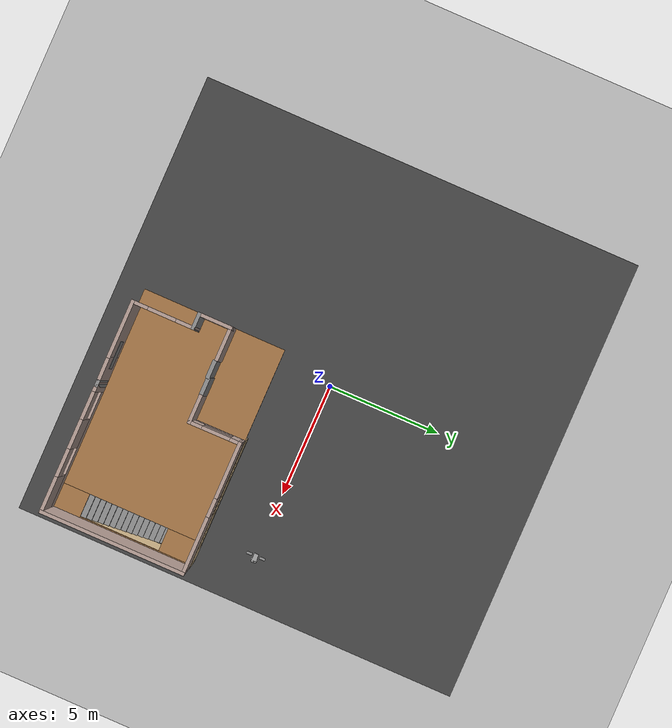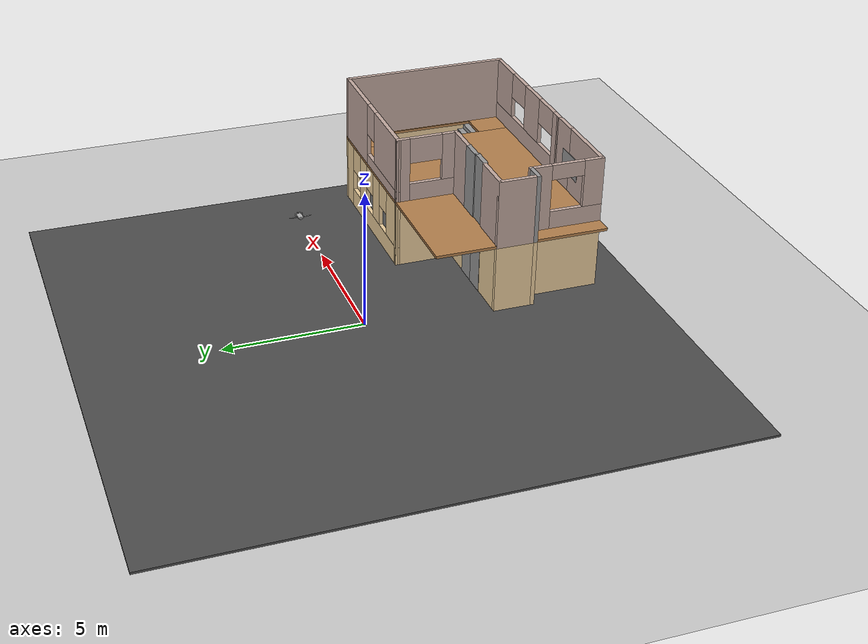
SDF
<sdf version="1.6">
 <world name="default">
  <model name="ground_plane">
   <static>1</static>
   <link name="link">
    <collision name="collision">
     <geometry><plane><normal>0 0 1</normal><size>100 100</size></plane></geometry>
     <surface>
      <contact><collide_bitmask>65535</collide_bitmask></contact>
      <friction><ode><mu>100</mu><mu2>50</mu2></ode></friction>
     </surface>
    </collision>
    <visual name="visual">
     <cast_shadows>0</cast_shadows>
     <geometry><plane><normal>0 0 1</normal><size>100 100</size></plane></geometry>
     <material>
      <script><uri>file://media/materials/scripts/gazebo.material</uri><name>Gazebo/Grey</name></script>
     </material>
    </visual>
   </link>
  </model>
  <model name="asphalt_plane">
   <static>1</static>
   <link name="link">
    <collision name="collision"><geometry><box><size>20 20 0.1</size></box></geometry></collision>
    <visual name="visual">
     <cast_shadows>0</cast_shadows>
     <geometry><box><size>20 20 0.1</size></box></geometry>
     <material>
      <script>
       <uri>model://asphalt_plane/materials/scripts</uri>
       <uri>model://asphalt_plane/materials/textures</uri>
       <name>vrc/asphalt</name>
      </script>
     </material>
    </visual>
   </link>
   <pose>0.036625 -0.045084 0 0 -0 0</pose>
  </model>
  <model name="tuc_house">
   <pose>4.28047 -5.41439 0 0 -0 0</pose>
   <link name="Door_2">
    <collision name="Door_2_Collision">
     <geometry><box><size>1 0.17 2.5</size></box></geometry>
     <pose>0 0 1.25 0 -0 0</pose>
    </collision>
    <visual name="Door_2_Visual">
     <pose>0 0 1.25 0 -0 0</pose>
     <geometry><box><size>1 0.17 2.5</size></box></geometry>
     <material>
      <script><uri>file://media/materials/scripts/gazebo.material</uri><name>Gazebo/Grey</name></script>
     </material>
    </visual>
    <pose>-1.34064 -3.05607 0 0 -0 3.14159</pose>
   </link>
   <link name="Floor_0">
    <pose>-0 -0 2.5 0 -0 0</pose>
    <visual name="Floor_0_Visual_0">
     <pose>-0.597526 0 0.05 0 -0 0</pose>
     <geometry><box><size>8.5947 6.26194 0.1</size></box></geometry>
     <material>
      <script><uri>file://media/materials/scripts/gazebo.material</uri><name>Gazebo/Wood</name></script>
      <ambient>1 1 1 1</ambient>
     </material>
     <meta><layer>1</layer></meta>
    </visual>
    <collision name="Floor_0_Collision_0">
     <geometry><box><size>8.5947 6.26194 0.1</size></box></geometry>
     <pose>-0.597526 0 0.05 0 -0 0</pose>
    </collision>
    <visual name="Floor_0_Visual_1">
     <pose>4.29735 -2.47324 0.05 0 -0 0</pose>
     <geometry><box><size>1.19505 1.31546 0.1</size></box></geometry>
     <material>
      <script><uri>file://media/materials/scripts/gazebo.material</uri><name>Gazebo/Wood</name></script>
      <ambient>1 1 1 1</ambient>
     </material>
     <meta><layer>1</layer></meta>
    </visual>
    <collision name="Floor_0_Collision_1">
     <geometry><box><size>1.19505 1.31546 0.1</size></box></geometry>
     <pose>4.29735 -2.47324 0.05 0 -0 0</pose>
    </collision>
    <visual name="Floor_0_Visual_2">
     <pose>4.79735 0.657731 0.05 0 -0 0</pose>
     <geometry><box><size>0.195052 4.94648 0.1</size></box></geometry>
     <material>
      <script><uri>file://media/materials/scripts/gazebo.material</uri><name>Gazebo/Wood</name></script>
      <ambient>1 1 1 1</ambient>
     </material>
     <meta><layer>1</layer></meta>
    </visual>
    <collision name="Floor_0_Collision_2">
     <geometry><box><size>0.195052 4.94648 0.1</size></box></geometry>
     <pose>4.79735 0.657731 0.05 0 -0 0</pose>
    </collision>
    <visual name="Floor_0_Visual_3">
     <pose>4.19983 2.40773 0.05 0 -0 0</pose>
     <geometry><box><size>1 1.44648 0.1</size></box></geometry>
     <material>
      <script><uri>file://media/materials/scripts/gazebo.material</uri><name>Gazebo/Wood</name></script>
      <ambient>1 1 1 1</ambient>
     </material>
     <meta><layer>1</layer></meta>
    </visual>
    <collision name="Floor_0_Collision_3">
     <geometry><box><size>1 1.44648 0.1</size></box></geometry>
     <pose>4.19983 2.40773 0.05 0 -0 0</pose>
    </collision>
    <visual name="Floor_0_Visual_4">
     <pose>4.79735 3.13097 0.05 0 -0 0</pose>
     <geometry><box><size>0.195052 0 0.1</size></box></geometry>
     <material>
      <script><uri>file://media/materials/scripts/gazebo.material</uri><name>Gazebo/Wood</name></script>
      <ambient>1 1 1 1</ambient>
     </material>
     <meta><layer>1</layer></meta>
    </visual>
    <collision name="Floor_0_Collision_4">
     <geometry><box><size>0.195052 0 0.1</size></box></geometry>
     <pose>4.79735 3.13097 0.05 0 -0 0</pose>
    </collision>
   </link>
   <link name="Stairs_0">
    <visual name="Stairs_0_Visual_0">
     <pose>4.19983 1.56782 0.083333 0 -0 0</pose>
     <geometry><box><size>1 0.233333 0.166667</size></box></geometry>
     <material>
      <script><uri>file://media/materials/scripts/gazebo.material</uri><name>Gazebo/Grey</name></script>
      <ambient>1 1 1 1</ambient>
     </material>
     <meta><layer>0</layer></meta>
    </visual>
    <collision name="Stairs_0_Collision_0">
     <geometry><box><size>1 0.233333 0.166667</size></box></geometry>
     <pose>4.19983 1.56782 0.083333 0 -0 0</pose>
    </collision>
    <visual name="Stairs_0_Visual_1">
     <pose>4.19983 1.33449 0.25 0 -0 0</pose>
     <geometry><box><size>1 0.233333 0.166667</size></box></geometry>
     <material>
      <script><uri>file://media/materials/scripts/gazebo.material</uri><name>Gazebo/Grey</name></script>
      <ambient>1 1 1 1</ambient>
     </material>
     <meta><layer>0</layer></meta>
    </visual>
    <collision name="Stairs_0_Collision_1">
     <geometry><box><size>1 0.233333 0.166667</size></box></geometry>
     <pose>4.19983 1.33449 0.25 0 -0 0</pose>
    </collision>
    <visual name="Stairs_0_Visual_2">
     <pose>4.19983 1.10116 0.416667 0 -0 0</pose>
     <geometry><box><size>1 0.233333 0.166667</size></box></geometry>
     <material>
      <script><uri>file://media/materials/scripts/gazebo.material</uri><name>Gazebo/Grey</name></script>
      <ambient>1 1 1 1</ambient>
     </material>
     <meta><layer>0</layer></meta>
    </visual>
    <collision name="Stairs_0_Collision_2">
     <geometry><box><size>1 0.233333 0.166667</size></box></geometry>
     <pose>4.19983 1.10116 0.416667 0 -0 0</pose>
    </collision>
    <visual name="Stairs_0_Visual_3">
     <pose>4.19983 0.867824 0.583333 0 -0 0</pose>
     <geometry><box><size>1 0.233333 0.166667</size></box></geometry>
     <material>
      <script><uri>file://media/materials/scripts/gazebo.material</uri><name>Gazebo/Grey</name></script>
      <ambient>1 1 1 1</ambient>
     </material>
     <meta><layer>0</layer></meta>
    </visual>
    <collision name="Stairs_0_Collision_3">
     <geometry><box><size>1 0.233333 0.166667</size></box></geometry>
     <pose>4.19983 0.867824 0.583333 0 -0 0</pose>
    </collision>
    <visual name="Stairs_0_Visual_4">
     <pose>4.19983 0.63449 0.75 0 -0 0</pose>
     <geometry><box><size>1 0.233333 0.166667</size></box></geometry>
     <material>
      <script><uri>file://media/materials/scripts/gazebo.material</uri><name>Gazebo/Grey</name></script>
      <ambient>1 1 1 1</ambient>
     </material>
     <meta><layer>0</layer></meta>
    </visual>
    <collision name="Stairs_0_Collision_4">
     <geometry><box><size>1 0.233333 0.166667</size></box></geometry>
     <pose>4.19983 0.63449 0.75 0 -0 0</pose>
    </collision>
    <visual name="Stairs_0_Visual_5">
     <pose>4.19983 0.401157 0.916667 0 -0 0</pose>
     <geometry><box><size>1 0.233333 0.166667</size></box></geometry>
     <material>
      <script><uri>file://media/materials/scripts/gazebo.material</uri><name>Gazebo/Grey</name></script>
      <ambient>1 1 1 1</ambient>
     </material>
     <meta><layer>0</layer></meta>
    </visual>
    <collision name="Stairs_0_Collision_5">
     <geometry><box><size>1 0.233333 0.166667</size></box></geometry>
     <pose>4.19983 0.401157 0.916667 0 -0 0</pose>
    </collision>
    <visual name="Stairs_0_Visual_6">
     <pose>4.19983 0.167824 1.08333 0 -0 0</pose>
     <geometry><box><size>1 0.233333 0.166667</size></box></geometry>
     <material>
      <script><uri>file://media/materials/scripts/gazebo.material</uri><name>Gazebo/Grey</name></script>
      <ambient>1 1 1 1</ambient>
     </material>
     <meta><layer>0</layer></meta>
    </visual>
    <collision name="Stairs_0_Collision_6">
     <geometry><box><size>1 0.233333 0.166667</size></box></geometry>
     <pose>4.19983 0.167824 1.08333 0 -0 0</pose>
    </collision>
    <visual name="Stairs_0_Visual_7">
     <pose>4.19983 -0.06551 1.25 0 -0 0</pose>
     <geometry><box><size>1 0.233333 0.166667</size></box></geometry>
     <material>
      <script><uri>file://media/materials/scripts/gazebo.material</uri><name>Gazebo/Grey</name></script>
      <ambient>1 1 1 1</ambient>
     </material>
     <meta><layer>0</layer></meta>
    </visual>
    <collision name="Stairs_0_Collision_7">
     <geometry><box><size>1 0.233333 0.166667</size></box></geometry>
     <pose>4.19983 -0.06551 1.25 0 -0 0</pose>
    </collision>
    <visual name="Stairs_0_Visual_8">
     <pose>4.19983 -0.298843 1.41667 0 -0 0</pose>
     <geometry><box><size>1 0.233333 0.166667</size></box></geometry>
     <material>
      <script><uri>file://media/materials/scripts/gazebo.material</uri><name>Gazebo/Grey</name></script>
      <ambient>1 1 1 1</ambient>
     </material>
     <meta><layer>0</layer></meta>
    </visual>
    <collision name="Stairs_0_Collision_8">
     <geometry><box><size>1 0.233333 0.166667</size></box></geometry>
     <pose>4.19983 -0.298843 1.41667 0 -0 0</pose>
    </collision>
    <visual name="Stairs_0_Visual_9">
     <pose>4.19983 -0.532176 1.58333 0 -0 0</pose>
     <geometry><box><size>1 0.233333 0.166667</size></box></geometry>
     <material>
      <script><uri>file://media/materials/scripts/gazebo.material</uri><name>Gazebo/Grey</name></script>
      <ambient>1 1 1 1</ambient>
     </material>
     <meta><layer>0</layer></meta>
    </visual>
    <collision name="Stairs_0_Collision_9">
     <geometry><box><size>1 0.233333 0.166667</size></box></geometry>
     <pose>4.19983 -0.532176 1.58333 0 -0 0</pose>
    </collision>
    <visual name="Stairs_0_Visual_10">
     <pose>4.19983 -0.76551 1.75 0 -0 0</pose>
     <geometry><box><size>1 0.233333 0.166667</size></box></geometry>
     <material>
      <script><uri>file://media/materials/scripts/gazebo.material</uri><name>Gazebo/Grey</name></script>
      <ambient>1 1 1 1</ambient>
     </material>
     <meta><layer>0</layer></meta>
    </visual>
    <collision name="Stairs_0_Collision_10">
     <geometry><box><size>1 0.233333 0.166667</size></box></geometry>
     <pose>4.19983 -0.76551 1.75 0 -0 0</pose>
    </collision>
    <visual name="Stairs_0_Visual_11">
     <pose>4.19983 -0.998843 1.91667 0 -0 0</pose>
     <geometry><box><size>1 0.233333 0.166667</size></box></geometry>
     <material>
      <script><uri>file://media/materials/scripts/gazebo.material</uri><name>Gazebo/Grey</name></script>
      <ambient>1 1 1 1</ambient>
     </material>
     <meta><layer>0</layer></meta>
    </visual>
    <collision name="Stairs_0_Collision_11">
     <geometry><box><size>1 0.233333 0.166667</size></box></geometry>
     <pose>4.19983 -0.998843 1.91667 0 -0 0</pose>
    </collision>
    <visual name="Stairs_0_Visual_12">
     <pose>4.19983 -1.23218 2.08333 0 -0 0</pose>
     <geometry><box><size>1 0.233333 0.166667</size></box></geometry>
     <material>
      <script><uri>file://media/materials/scripts/gazebo.material</uri><name>Gazebo/Grey</name></script>
      <ambient>1 1 1 1</ambient>
     </material>
     <meta><layer>0</layer></meta>
    </visual>
    <collision name="Stairs_0_Collision_12">
     <geometry><box><size>1 0.233333 0.166667</size></box></geometry>
     <pose>4.19983 -1.23218 2.08333 0 -0 0</pose>
    </collision>
    <visual name="Stairs_0_Visual_13">
     <pose>4.19983 -1.46551 2.25 0 -0 0</pose>
     <geometry><box><size>1 0.233333 0.166667</size></box></geometry>
     <material>
      <script><uri>file://media/materials/scripts/gazebo.material</uri><name>Gazebo/Grey</name></script>
      <ambient>1 1 1 1</ambient>
     </material>
     <meta><layer>0</layer></meta>
    </visual>
    <collision name="Stairs_0_Collision_13">
     <geometry><box><size>1 0.233333 0.166667</size></box></geometry>
     <pose>4.19983 -1.46551 2.25 0 -0 0</pose>
    </collision>
    <visual name="Stairs_0_Visual_14">
     <pose>4.19983 -1.69884 2.41667 0 -0 0</pose>
     <geometry><box><size>1 0.233333 0.166667</size></box></geometry>
     <material>
      <script><uri>file://media/materials/scripts/gazebo.material</uri><name>Gazebo/Grey</name></script>
      <ambient>1 1 1 1</ambient>
     </material>
     <meta><layer>0</layer></meta>
    </visual>
    <collision name="Stairs_0_Collision_14">
     <geometry><box><size>1 0.233333 0.166667</size></box></geometry>
     <pose>4.19983 -1.69884 2.41667 0 -0 0</pose>
    </collision>
   </link>
   <link name="Wall_14">
    <collision name="Wall_14_Collision">
     <geometry><box><size>2.75 0.15 2.5</size></box></geometry>
     <pose>0 0 1.25 0 -0 0</pose>
    </collision>
    <visual name="Wall_14_Visual">
     <pose>0 0 1.25 0 -0 0</pose>
     <geometry><box><size>2.75 0.15 2.5</size></box></geometry>
     <material>
      <script><uri>file://media/materials/scripts/gazebo.material</uri><name>Gazebo/Grey</name></script>
      <ambient>0.921569 0.807843 0.615686 1</ambient>
     </material>
     <meta><layer>0</layer></meta>
    </visual>
    <pose>-4.21988 -1.75558 0 0 -0 -1.5708</pose>
   </link>
   <link name="Wall_15">
    <collision name="Wall_15_Collision">
     <geometry><box><size>0.15 0.15 2.5</size></box></geometry>
     <pose>0 0 1.25 0 -0 0</pose>
    </collision>
    <visual name="Wall_15_Visual">
     <pose>0 0 1.25 0 -0 0</pose>
     <geometry><box><size>0.15 0.15 2.5</size></box></geometry>
     <material>
      <script><uri>file://media/materials/scripts/gazebo.material</uri><name>Gazebo/Grey</name></script>
      <ambient>1 1 1 1</ambient>
     </material>
     <meta><layer>0</layer></meta>
    </visual>
    <pose>-4.21988 -3.05558 0 0 -0 0</pose>
   </link>
   <link name="Wall_16">
    <collision name="Wall_16_Collision">
     <geometry><box><size>2.5 0.15 2.5</size></box></geometry>
     <pose>0 0 1.25 0 -0 0</pose>
    </collision>
    <visual name="Wall_16_Visual">
     <pose>0 0 1.25 0 -0 0</pose>
     <geometry><box><size>2.5 0.15 2.5</size></box></geometry>
     <material>
      <script><uri>file://media/materials/scripts/gazebo.material</uri><name>Gazebo/Grey</name></script>
      <ambient>0.921569 0.807843 0.615686 1</ambient>
     </material>
     <meta><layer>0</layer></meta>
    </visual>
    <pose>-3.04488 -3.05558 0 0 -0 0</pose>
   </link>
   <link name="Wall_18">
    <collision name="Wall_18_Collision">
     <geometry><box><size>1.5 0.15 2.5</size></box></geometry>
     <pose>0 0 1.25 0 -0 0</pose>
    </collision>
    <visual name="Wall_18_Visual">
     <pose>0 0 1.25 0 -0 0</pose>
     <geometry><box><size>1.5 0.15 2.5</size></box></geometry>
     <material>
      <script><uri>file://media/materials/scripts/gazebo.material</uri><name>Gazebo/Grey</name></script>
      <ambient>0.921569 0.807843 0.615686 1</ambient>
     </material>
     <meta><layer>0</layer></meta>
    </visual>
    <pose>-4.81988 0.21942 0 0 -0 1.5708</pose>
   </link>
   <link name="Wall_19">
    <collision name="Wall_19_Collision">
     <geometry><box><size>1.5 0.15 2.5</size></box></geometry>
     <pose>0 0 1.25 0 -0 0</pose>
    </collision>
    <visual name="Wall_19_Visual">
     <pose>0 0 1.25 0 -0 0</pose>
     <geometry><box><size>1.5 0.15 2.5</size></box></geometry>
     <material>
      <script><uri>file://media/materials/scripts/gazebo.material</uri><name>Gazebo/Grey</name></script>
      <ambient>0.921569 0.807843 0.615686 1</ambient>
     </material>
     <meta><layer>0</layer></meta>
    </visual>
    <pose>-4.14488 0.89442 0 0 -0 0</pose>
   </link>
   <link name="Wall_21">
    <collision name="Wall_21_Collision">
     <geometry><box><size>1.25 0.15 2.5</size></box></geometry>
     <pose>0 0 1.25 0 -0 0</pose>
    </collision>
    <visual name="Wall_21_Visual">
     <pose>0 0 1.25 0 -0 0</pose>
     <geometry><box><size>1.25 0.15 2.5</size></box></geometry>
     <material>
      <script><uri>file://media/materials/scripts/gazebo.material</uri><name>Gazebo/Grey</name></script>
      <ambient>0.921569 0.807843 0.615686 1</ambient>
     </material>
     <meta><layer>0</layer></meta>
    </visual>
    <pose>-1.31538 0.891409 0 0 -0 0</pose>
   </link>
   <link name="Wall_24">
    <collision name="Wall_24_Collision">
     <geometry><box><size>0.3 0.15 2.5</size></box></geometry>
     <pose>0 0 1.25 0 -0 0</pose>
    </collision>
    <visual name="Wall_24_Visual">
     <pose>0 0 1.25 0 -0 0</pose>
     <geometry><box><size>0.3 0.15 2.5</size></box></geometry>
     <material>
      <script><uri>file://media/materials/scripts/gazebo.material</uri><name>Gazebo/Grey</name></script>
      <ambient>1 1 1 1</ambient>
     </material>
     <meta><layer>0</layer></meta>
    </visual>
    <pose>-0.705123 -3.04415 0 0 -0 0</pose>
   </link>
   <link name="Wall_26">
    <pose>2.01988 -3.04415 0 0 -0 0</pose>
    <visual name="Wall_26_Visual_0">
     <pose>-2.16634 0 1.25 0 -0 0</pose>
     <geometry><box><size>1.41732 0.15 2.5</size></box></geometry>
     <material>
      <script><uri>file://media/materials/scripts/gazebo.material</uri><name>Gazebo/Grey</name></script>
      <ambient>0.921569 0.807843 0.615686 1</ambient>
     </material>
     <meta><layer>0</layer></meta>
    </visual>
    <collision name="Wall_26_Collision_0">
     <geometry><box><size>1.41732 0.15 2.5</size></box></geometry>
     <pose>-2.16634 0 1.25 0 -0 0</pose>
    </collision>
    <visual name="Wall_26_Visual_1">
     <pose>0.708663 0 0.375 0 -0 0</pose>
     <geometry><box><size>4.33268 0.15 0.75</size></box></geometry>
     <material>
      <script><uri>file://media/materials/scripts/gazebo.material</uri><name>Gazebo/Grey</name></script>
      <ambient>0.921569 0.807843 0.615686 1</ambient>
     </material>
     <meta><layer>0</layer></meta>
    </visual>
    <collision name="Wall_26_Collision_1">
     <geometry><box><size>4.33268 0.15 0.75</size></box></geometry>
     <pose>0.708663 0 0.375 0 -0 0</pose>
    </collision>
    <visual name="Wall_26_Visual_2">
     <pose>2.10866 0 1.625 0 -0 0</pose>
     <geometry><box><size>1.53268 0.15 1.75</size></box></geometry>
     <material>
      <script><uri>file://media/materials/scripts/gazebo.material</uri><name>Gazebo/Grey</name></script>
      <ambient>0.921569 0.807843 0.615686 1</ambient>
     </material>
     <meta><layer>0</layer></meta>
    </visual>
    <collision name="Wall_26_Collision_2">
     <geometry><box><size>1.53268 0.15 1.75</size></box></geometry>
     <pose>2.10866 0 1.625 0 -0 0</pose>
    </collision>
    <visual name="Wall_26_Visual_3">
     <pose>-0.057675 0 2.025 0 -0 0</pose>
     <geometry><box><size>2.8 0.15 0.95</size></box></geometry>
     <material>
      <script><uri>file://media/materials/scripts/gazebo.material</uri><name>Gazebo/Grey</name></script>
      <ambient>0.921569 0.807843 0.615686 1</ambient>
     </material>
     <meta><layer>0</layer></meta>
    </visual>
    <collision name="Wall_26_Collision_3">
     <geometry><box><size>2.8 0.15 0.95</size></box></geometry>
     <pose>-0.057675 0 2.025 0 -0 0</pose>
    </collision>
   </link>
   <link name="Wall_27">
    <collision name="Wall_27_Collision">
     <geometry><box><size>6.25 0.15 2.5</size></box></geometry>
     <pose>0 0 1.25 0 -0 0</pose>
    </collision>
    <visual name="Wall_27_Visual">
     <pose>0 0 1.25 0 -0 0</pose>
     <geometry><box><size>6.25 0.15 2.5</size></box></geometry>
     <material>
      <script><uri>file://media/materials/scripts/gazebo.material</uri><name>Gazebo/Grey</name></script>
      <ambient>0.921569 0.807843 0.615686 1</ambient>
     </material>
     <meta><layer>0</layer></meta>
    </visual>
    <pose>4.81988 0.005854 0 0 -0 1.5708</pose>
   </link>
   <link name="Wall_31">
    <pose>2.01988 3.05585 0 0 -0 3.14159</pose>
    <visual name="Wall_31_Visual_0">
     <pose>-2.45452 0 1.25 0 -0 0</pose>
     <geometry><box><size>0.840955 0.15 2.5</size></box></geometry>
     <material>
      <script><uri>file://media/materials/scripts/gazebo.material</uri><name>Gazebo/Grey</name></script>
      <ambient>0.921569 0.807843 0.615686 1</ambient>
     </material>
     <meta><layer>0</layer></meta>
    </visual>
    <collision name="Wall_31_Collision_0">
     <geometry><box><size>0.840955 0.15 2.5</size></box></geometry>
     <pose>-2.45452 0 1.25 0 -0 0</pose>
    </collision>
    <visual name="Wall_31_Visual_1">
     <pose>0.420477 0 0.375 0 -0 0</pose>
     <geometry><box><size>4.90904 0.15 0.75</size></box></geometry>
     <material>
      <script><uri>file://media/materials/scripts/gazebo.material</uri><name>Gazebo/Grey</name></script>
      <ambient>0.921569 0.807843 0.615686 1</ambient>
     </material>
     <meta><layer>0</layer></meta>
    </visual>
    <collision name="Wall_31_Collision_1">
     <geometry><box><size>4.90904 0.15 0.75</size></box></geometry>
     <pose>0.420477 0 0.375 0 -0 0</pose>
    </collision>
    <visual name="Wall_31_Visual_2">
     <pose>-0.862489 0 1.625 0 -0 0</pose>
     <geometry><box><size>0.743111 0.15 1.75</size></box></geometry>
     <material>
      <script><uri>file://media/materials/scripts/gazebo.material</uri><name>Gazebo/Grey</name></script>
      <ambient>0.921569 0.807843 0.615686 1</ambient>
     </material>
     <meta><layer>0</layer></meta>
    </visual>
    <collision name="Wall_31_Collision_2">
     <geometry><box><size>0.743111 0.15 1.75</size></box></geometry>
     <pose>-0.862489 0 1.625 0 -0 0</pose>
    </collision>
    <visual name="Wall_31_Visual_3">
     <pose>0.655733 0 1.625 0 -0 0</pose>
     <geometry><box><size>0.693333 0.15 1.75</size></box></geometry>
     <material>
      <script><uri>file://media/materials/scripts/gazebo.material</uri><name>Gazebo/Grey</name></script>
      <ambient>0.921569 0.807843 0.615686 1</ambient>
     </material>
     <meta><layer>0</layer></meta>
    </visual>
    <collision name="Wall_31_Collision_3">
     <geometry><box><size>0.693333 0.15 1.75</size></box></geometry>
     <pose>0.655733 0 1.625 0 -0 0</pose>
    </collision>
    <visual name="Wall_31_Visual_4">
     <pose>1.9387 0 0.755 0 -0 0</pose>
     <geometry><box><size>1.8726 0.15 0.01</size></box></geometry>
     <material>
      <script><uri>file://media/materials/scripts/gazebo.material</uri><name>Gazebo/Grey</name></script>
      <ambient>0.921569 0.807843 0.615686 1</ambient>
     </material>
     <meta><layer>0</layer></meta>
    </visual>
    <collision name="Wall_31_Collision_4">
     <geometry><box><size>1.8726 0.15 0.01</size></box></geometry>
     <pose>1.9387 0 0.755 0 -0 0</pose>
    </collision>
    <visual name="Wall_31_Visual_5">
     <pose>2.3387 0 1.63 0 -0 0</pose>
     <geometry><box><size>1.0726 0.15 1.74</size></box></geometry>
     <material>
      <script><uri>file://media/materials/scripts/gazebo.material</uri><name>Gazebo/Grey</name></script>
      <ambient>0.921569 0.807843 0.615686 1</ambient>
     </material>
     <meta><layer>0</layer></meta>
    </visual>
    <collision name="Wall_31_Collision_5">
     <geometry><box><size>1.0726 0.15 1.74</size></box></geometry>
     <pose>2.3387 0 1.63 0 -0 0</pose>
    </collision>
    <visual name="Wall_31_Visual_6">
     <pose>-1.63404 0 2.025 0 -0 0</pose>
     <geometry><box><size>0.8 0.15 0.95</size></box></geometry>
     <material>
      <script><uri>file://media/materials/scripts/gazebo.material</uri><name>Gazebo/Grey</name></script>
      <ambient>0.921569 0.807843 0.615686 1</ambient>
     </material>
     <meta><layer>0</layer></meta>
    </visual>
    <collision name="Wall_31_Collision_6">
     <geometry><box><size>0.8 0.15 0.95</size></box></geometry>
     <pose>-1.63404 0 2.025 0 -0 0</pose>
    </collision>
    <visual name="Wall_31_Visual_7">
     <pose>-0.090934 0 2.025 0 -0 0</pose>
     <geometry><box><size>0.8 0.15 0.95</size></box></geometry>
     <material>
      <script><uri>file://media/materials/scripts/gazebo.material</uri><name>Gazebo/Grey</name></script>
      <ambient>0.921569 0.807843 0.615686 1</ambient>
     </material>
     <meta><layer>0</layer></meta>
    </visual>
    <collision name="Wall_31_Collision_7">
     <geometry><box><size>0.8 0.15 0.95</size></box></geometry>
     <pose>-0.090934 0 2.025 0 -0 0</pose>
    </collision>
    <visual name="Wall_31_Visual_8">
     <pose>1.4024 0 2.03 0 -0 0</pose>
     <geometry><box><size>0.8 0.15 0.94</size></box></geometry>
     <material>
      <script><uri>file://media/materials/scripts/gazebo.material</uri><name>Gazebo/Grey</name></script>
      <ambient>0.921569 0.807843 0.615686 1</ambient>
     </material>
     <meta><layer>0</layer></meta>
    </visual>
    <collision name="Wall_31_Collision_8">
     <geometry><box><size>0.8 0.15 0.94</size></box></geometry>
     <pose>1.4024 0 2.03 0 -0 0</pose>
    </collision>
   </link>
   <link name="Wall_32">
    <collision name="Wall_32_Collision">
     <geometry><box><size>2.31449 0.15 2.5</size></box></geometry>
     <pose>0 0 1.25 0 -0 0</pose>
    </collision>
    <visual name="Wall_32_Visual">
     <pose>0 0 1.25 0 -0 0</pose>
     <geometry><box><size>2.31449 0.15 2.5</size></box></geometry>
     <material>
      <script><uri>file://media/materials/scripts/gazebo.material</uri><name>Gazebo/Grey</name></script>
      <ambient>0.921569 0.807843 0.615686 1</ambient>
     </material>
     <meta><layer>0</layer></meta>
    </visual>
    <pose>-0.772752 1.97363 0 0 -0 -1.56399</pose>
   </link>
   <link name="Wall_34">
    <collision name="Wall_34_Collision">
     <geometry><box><size>0.75 0.15 2.5</size></box></geometry>
     <pose>0 0 1.25 0 -0 0</pose>
    </collision>
    <visual name="Wall_34_Visual">
     <pose>0 0 1.25 0 -0 0</pose>
     <geometry><box><size>0.75 0.15 2.5</size></box></geometry>
     <material>
      <script><uri>file://media/materials/scripts/gazebo.material</uri><name>Gazebo/Grey</name></script>
      <ambient>1 1 1 1</ambient>
     </material>
     <meta><layer>1</layer></meta>
    </visual>
    <pose>-4.51988 -0.45558 2.5 0 -0 0</pose>
   </link>
   <link name="Wall_35">
    <pose>-4.21988 -1.75558 2.5 0 -0 -1.5708</pose>
    <visual name="Wall_35_Visual_0">
     <pose>-0.964149 0 1.25 0 -0 0</pose>
     <geometry><box><size>0.821702 0.15 2.5</size></box></geometry>
     <material>
      <script><uri>file://media/materials/scripts/gazebo.material</uri><name>Gazebo/Grey</name></script>
      <ambient>0.760784 0.662745 0.627451 1</ambient>
     </material>
     <meta><layer>1</layer></meta>
    </visual>
    <collision name="Wall_35_Collision_0">
     <geometry><box><size>0.821702 0.15 2.5</size></box></geometry>
     <pose>-0.964149 0 1.25 0 -0 0</pose>
    </collision>
    <visual name="Wall_35_Visual_1">
     <pose>0.410851 0 0.375 0 -0 0</pose>
     <geometry><box><size>1.9283 0.15 0.75</size></box></geometry>
     <material>
      <script><uri>file://media/materials/scripts/gazebo.material</uri><name>Gazebo/Grey</name></script>
      <ambient>0.760784 0.662745 0.627451 1</ambient>
     </material>
     <meta><layer>1</layer></meta>
    </visual>
    <collision name="Wall_35_Collision_1">
     <geometry><box><size>1.9283 0.15 0.75</size></box></geometry>
     <pose>0.410851 0 0.375 0 -0 0</pose>
    </collision>
    <visual name="Wall_35_Visual_2">
     <pose>1.01085 0 1.625 0 -0 0</pose>
     <geometry><box><size>0.728298 0.15 1.75</size></box></geometry>
     <material>
      <script><uri>file://media/materials/scripts/gazebo.material</uri><name>Gazebo/Grey</name></script>
      <ambient>0.760784 0.662745 0.627451 1</ambient>
     </material>
     <meta><layer>1</layer></meta>
    </visual>
    <collision name="Wall_35_Collision_2">
     <geometry><box><size>0.728298 0.15 1.75</size></box></geometry>
     <pose>1.01085 0 1.625 0 -0 0</pose>
    </collision>
    <visual name="Wall_35_Visual_3">
     <pose>0.046702 0 2.225 0 -0 0</pose>
     <geometry><box><size>1.2 0.15 0.55</size></box></geometry>
     <material>
      <script><uri>file://media/materials/scripts/gazebo.material</uri><name>Gazebo/Grey</name></script>
      <ambient>0.760784 0.662745 0.627451 1</ambient>
     </material>
     <meta><layer>1</layer></meta>
    </visual>
    <collision name="Wall_35_Collision_3">
     <geometry><box><size>1.2 0.15 0.55</size></box></geometry>
     <pose>0.046702 0 2.225 0 -0 0</pose>
    </collision>
   </link>
   <link name="Wall_36">
    <collision name="Wall_36_Collision">
     <geometry><box><size>0.15 0.15 2.5</size></box></geometry>
     <pose>0 0 1.25 0 -0 0</pose>
    </collision>
    <visual name="Wall_36_Visual">
     <pose>0 0 1.25 0 -0 0</pose>
     <geometry><box><size>0.15 0.15 2.5</size></box></geometry>
     <material>
      <script><uri>file://media/materials/scripts/gazebo.material</uri><name>Gazebo/Grey</name></script>
      <ambient>1 1 1 1</ambient>
     </material>
     <meta><layer>1</layer></meta>
    </visual>
    <pose>-4.21988 -3.05558 2.5 0 -0 0</pose>
   </link>
   <link name="Wall_37">
    <collision name="Wall_37_Collision">
     <geometry><box><size>2.5 0.15 2.5</size></box></geometry>
     <pose>0 0 1.25 0 -0 0</pose>
    </collision>
    <visual name="Wall_37_Visual">
     <pose>0 0 1.25 0 -0 0</pose>
     <geometry><box><size>2.5 0.15 2.5</size></box></geometry>
     <material>
      <script><uri>file://media/materials/scripts/gazebo.material</uri><name>Gazebo/Grey</name></script>
      <ambient>0.760784 0.662745 0.627451 1</ambient>
     </material>
     <meta><layer>1</layer></meta>
    </visual>
    <pose>-3.04488 -3.05558 2.5 0 -0 0</pose>
   </link>
   <link name="Wall_38">
    <collision name="Wall_38_Collision">
     <geometry><box><size>1.5 0.15 2.5</size></box></geometry>
     <pose>0 0 1.25 0 -0 0</pose>
    </collision>
    <visual name="Wall_38_Visual">
     <pose>0 0 1.25 0 -0 0</pose>
     <geometry><box><size>1.5 0.15 2.5</size></box></geometry>
     <material>
      <script><uri>file://media/materials/scripts/gazebo.material</uri><name>Gazebo/Grey</name></script>
      <ambient>0.760784 0.662745 0.627451 1</ambient>
     </material>
     <meta><layer>1</layer></meta>
    </visual>
    <pose>-4.81988 0.21942 2.5 0 -0 1.5708</pose>
   </link>
   <link name="Wall_39">
    <collision name="Wall_39_Collision">
     <geometry><box><size>1.5 0.15 2.5</size></box></geometry>
     <pose>0 0 1.25 0 -0 0</pose>
    </collision>
    <visual name="Wall_39_Visual">
     <pose>0 0 1.25 0 -0 0</pose>
     <geometry><box><size>1.5 0.15 2.5</size></box></geometry>
     <material>
      <script><uri>file://media/materials/scripts/gazebo.material</uri><name>Gazebo/Grey</name></script>
      <ambient>0.760784 0.662745 0.627451 1</ambient>
     </material>
     <meta><layer>1</layer></meta>
    </visual>
    <pose>-4.14488 0.89442 2.5 0 -0 0</pose>
   </link>
   <link name="Wall_40">
    <collision name="Wall_40_Collision">
     <geometry><box><size>1.25 0.15 2.5</size></box></geometry>
     <pose>0 0 1.25 0 -0 0</pose>
    </collision>
    <visual name="Wall_40_Visual">
     <pose>0 0 1.25 0 -0 0</pose>
     <geometry><box><size>1.25 0.15 2.5</size></box></geometry>
     <material>
      <script><uri>file://media/materials/scripts/gazebo.material</uri><name>Gazebo/Grey</name></script>
      <ambient>0.760784 0.662745 0.627451 1</ambient>
     </material>
     <meta><layer>1</layer></meta>
    </visual>
    <pose>-1.31538 0.891409 2.5 0 -0 0</pose>
   </link>
   <link name="Wall_41">
    <collision name="Wall_41_Collision">
     <geometry><box><size>0.3 0.15 2.5</size></box></geometry>
     <pose>0 0 1.25 0 -0 0</pose>
    </collision>
    <visual name="Wall_41_Visual">
     <pose>0 0 1.25 0 -0 0</pose>
     <geometry><box><size>0.3 0.15 2.5</size></box></geometry>
     <material>
      <script><uri>file://media/materials/scripts/gazebo.material</uri><name>Gazebo/Grey</name></script>
      <ambient>1 1 1 1</ambient>
     </material>
     <meta><layer>1</layer></meta>
    </visual>
    <pose>-0.705123 -3.04415 2.5 0 -0 0</pose>
   </link>
   <link name="Wall_42">
    <pose>2.01988 -3.04415 2.5 0 -0 0</pose>
    <visual name="Wall_42_Visual_0">
     <pose>-2.625 0 1.25 0 -0 0</pose>
     <geometry><box><size>0.499992 0.15 2.5</size></box></geometry>
     <material>
      <script><uri>file://media/materials/scripts/gazebo.material</uri><name>Gazebo/Grey</name></script>
      <ambient>0.760784 0.662745 0.627451 1</ambient>
     </material>
     <meta><layer>1</layer></meta>
    </visual>
    <collision name="Wall_42_Collision_0">
     <geometry><box><size>0.499992 0.15 2.5</size></box></geometry>
     <pose>-2.625 0 1.25 0 -0 0</pose>
    </collision>
    <visual name="Wall_42_Visual_1">
     <pose>0.249996 0 0.375 0 -0 0</pose>
     <geometry><box><size>5.25001 0.15 0.75</size></box></geometry>
     <material>
      <script><uri>file://media/materials/scripts/gazebo.material</uri><name>Gazebo/Grey</name></script>
      <ambient>0.760784 0.662745 0.627451 1</ambient>
     </material>
     <meta><layer>1</layer></meta>
    </visual>
    <collision name="Wall_42_Collision_1">
     <geometry><box><size>5.25001 0.15 0.75</size></box></geometry>
     <pose>0.249996 0 0.375 0 -0 0</pose>
    </collision>
    <visual name="Wall_42_Visual_2">
     <pose>-0.543008 0 1.625 0 -0 0</pose>
     <geometry><box><size>1.264 0.15 1.75</size></box></geometry>
     <material>
      <script><uri>file://media/materials/scripts/gazebo.material</uri><name>Gazebo/Grey</name></script>
      <ambient>0.760784 0.662745 0.627451 1</ambient>
     </material>
     <meta><layer>1</layer></meta>
    </visual>
    <collision name="Wall_42_Collision_2">
     <geometry><box><size>1.264 0.15 1.75</size></box></geometry>
     <pose>-0.543008 0 1.625 0 -0 0</pose>
    </collision>
    <visual name="Wall_42_Visual_3">
     <pose>2.082 0 1.625 0 -0 0</pose>
     <geometry><box><size>1.58601 0.15 1.75</size></box></geometry>
     <material>
      <script><uri>file://media/materials/scripts/gazebo.material</uri><name>Gazebo/Grey</name></script>
      <ambient>0.760784 0.662745 0.627451 1</ambient>
     </material>
     <meta><layer>1</layer></meta>
    </visual>
    <collision name="Wall_42_Collision_3">
     <geometry><box><size>1.58601 0.15 1.75</size></box></geometry>
     <pose>2.082 0 1.625 0 -0 0</pose>
    </collision>
    <visual name="Wall_42_Visual_4">
     <pose>-1.77501 0 2.025 0 -0 0</pose>
     <geometry><box><size>1.2 0.15 0.95</size></box></geometry>
     <material>
      <script><uri>file://media/materials/scripts/gazebo.material</uri><name>Gazebo/Grey</name></script>
      <ambient>0.760784 0.662745 0.627451 1</ambient>
     </material>
     <meta><layer>1</layer></meta>
    </visual>
    <collision name="Wall_42_Collision_4">
     <geometry><box><size>1.2 0.15 0.95</size></box></geometry>
     <pose>-1.77501 0 2.025 0 -0 0</pose>
    </collision>
    <visual name="Wall_42_Visual_5">
     <pose>0.688992 0 2.025 0 -0 0</pose>
     <geometry><box><size>1.2 0.15 0.95</size></box></geometry>
     <material>
      <script><uri>file://media/materials/scripts/gazebo.material</uri><name>Gazebo/Grey</name></script>
      <ambient>0.760784 0.662745 0.627451 1</ambient>
     </material>
     <meta><layer>1</layer></meta>
    </visual>
    <collision name="Wall_42_Collision_5">
     <geometry><box><size>1.2 0.15 0.95</size></box></geometry>
     <pose>0.688992 0 2.025 0 -0 0</pose>
    </collision>
   </link>
   <link name="Wall_43">
    <collision name="Wall_43_Collision">
     <geometry><box><size>6.25 0.15 2.5</size></box></geometry>
     <pose>0 0 1.25 0 -0 0</pose>
    </collision>
    <visual name="Wall_43_Visual">
     <pose>0 0 1.25 0 -0 0</pose>
     <geometry><box><size>6.25 0.15 2.5</size></box></geometry>
     <material>
      <script><uri>file://media/materials/scripts/gazebo.material</uri><name>Gazebo/Grey</name></script>
      <ambient>0.760784 0.662745 0.627451 1</ambient>
     </material>
     <meta><layer>1</layer></meta>
    </visual>
    <pose>4.81988 0.005854 2.5 0 -0 1.5708</pose>
   </link>
   <link name="Wall_44">
    <pose>2.01988 3.05585 2.5 0 -0 3.14159</pose>
    <visual name="Wall_44_Visual_0">
     <pose>-1.62111 0 1.25 0 -0 0</pose>
     <geometry><box><size>2.50779 0.15 2.5</size></box></geometry>
     <material>
      <script><uri>file://media/materials/scripts/gazebo.material</uri><name>Gazebo/Grey</name></script>
      <ambient>0.760784 0.662745 0.627451 1</ambient>
     </material>
     <meta><layer>1</layer></meta>
    </visual>
    <collision name="Wall_44_Collision_0">
     <geometry><box><size>2.50779 0.15 2.5</size></box></geometry>
     <pose>-1.62111 0 1.25 0 -0 0</pose>
    </collision>
    <visual name="Wall_44_Visual_1">
     <pose>1.25389 0 0.25 0 -0 0</pose>
     <geometry><box><size>3.24221 0.15 0.5</size></box></geometry>
     <material>
      <script><uri>file://media/materials/scripts/gazebo.material</uri><name>Gazebo/Grey</name></script>
      <ambient>0.760784 0.662745 0.627451 1</ambient>
     </material>
     <meta><layer>1</layer></meta>
    </visual>
    <collision name="Wall_44_Collision_1">
     <geometry><box><size>3.24221 0.15 0.5</size></box></geometry>
     <pose>1.25389 0 0.25 0 -0 0</pose>
    </collision>
    <visual name="Wall_44_Visual_2">
     <pose>1.65389 0 1.5 0 -0 0</pose>
     <geometry><box><size>2.44221 0.15 2</size></box></geometry>
     <material>
      <script><uri>file://media/materials/scripts/gazebo.material</uri><name>Gazebo/Grey</name></script>
      <ambient>0.760784 0.662745 0.627451 1</ambient>
     </material>
     <meta><layer>1</layer></meta>
    </visual>
    <collision name="Wall_44_Collision_2">
     <geometry><box><size>2.44221 0.15 2</size></box></geometry>
     <pose>1.65389 0 1.5 0 -0 0</pose>
    </collision>
    <visual name="Wall_44_Visual_3">
     <pose>0.032786 0 1.9 0 -0 0</pose>
     <geometry><box><size>0.8 0.15 1.2</size></box></geometry>
     <material>
      <script><uri>file://media/materials/scripts/gazebo.material</uri><name>Gazebo/Grey</name></script>
      <ambient>0.760784 0.662745 0.627451 1</ambient>
     </material>
     <meta><layer>1</layer></meta>
    </visual>
    <collision name="Wall_44_Collision_3">
     <geometry><box><size>0.8 0.15 1.2</size></box></geometry>
     <pose>0.032786 0 1.9 0 -0 0</pose>
    </collision>
   </link>
   <link name="Wall_45">
    <pose>-0.772752 1.97363 2.5 0 -0 -1.56399</pose>
    <visual name="Wall_45_Visual_0">
     <pose>-0.90712 0 1.25 0 -0 0</pose>
     <geometry><box><size>0.500254 0.15 2.5</size></box></geometry>
     <material>
      <script><uri>file://media/materials/scripts/gazebo.material</uri><name>Gazebo/Grey</name></script>
      <ambient>0.760784 0.662745 0.627451 1</ambient>
     </material>
     <meta><layer>1</layer></meta>
    </visual>
    <collision name="Wall_45_Collision_0">
     <geometry><box><size>0.500254 0.15 2.5</size></box></geometry>
     <pose>-0.90712 0 1.25 0 -0 0</pose>
    </collision>
    <visual name="Wall_45_Visual_1">
     <pose>0.250127 0 0.375 0 -0 0</pose>
     <geometry><box><size>1.81424 0.15 0.75</size></box></geometry>
     <material>
      <script><uri>file://media/materials/scripts/gazebo.material</uri><name>Gazebo/Grey</name></script>
      <ambient>0.760784 0.662745 0.627451 1</ambient>
     </material>
     <meta><layer>1</layer></meta>
    </visual>
    <collision name="Wall_45_Collision_1">
     <geometry><box><size>1.81424 0.15 0.75</size></box></geometry>
     <pose>0.250127 0 0.375 0 -0 0</pose>
    </collision>
    <visual name="Wall_45_Visual_2">
     <pose>0.850127 0 1.625 0 -0 0</pose>
     <geometry><box><size>0.61424 0.15 1.75</size></box></geometry>
     <material>
      <script><uri>file://media/materials/scripts/gazebo.material</uri><name>Gazebo/Grey</name></script>
      <ambient>0.760784 0.662745 0.627451 1</ambient>
     </material>
     <meta><layer>1</layer></meta>
    </visual>
    <collision name="Wall_45_Collision_2">
     <geometry><box><size>0.61424 0.15 1.75</size></box></geometry>
     <pose>0.850127 0 1.625 0 -0 0</pose>
    </collision>
    <visual name="Wall_45_Visual_3">
     <pose>-0.056993 0 2.025 0 -0 0</pose>
     <geometry><box><size>1.2 0.15 0.95</size></box></geometry>
     <material>
      <script><uri>file://media/materials/scripts/gazebo.material</uri><name>Gazebo/Grey</name></script>
      <ambient>0.760784 0.662745 0.627451 1</ambient>
     </material>
     <meta><layer>1</layer></meta>
    </visual>
    <collision name="Wall_45_Collision_3">
     <geometry><box><size>1.2 0.15 0.95</size></box></geometry>
     <pose>-0.056993 0 2.025 0 -0 0</pose>
    </collision>
   </link>
   <link name="Wall_46">
    <collision name="Wall_46_Collision">
     <geometry><box><size>1.23981 0.15 2.5</size></box></geometry>
     <pose>0 0 1.25 0 -0 0</pose>
    </collision>
    <visual name="Wall_46_Visual">
     <pose>0 0 1.25 0 -0 0</pose>
     <geometry><box><size>1.23981 0.15 2.5</size></box></geometry>
     <material>
      <script><uri>file://media/materials/scripts/gazebo.material</uri><name>Gazebo/Grey</name></script>
      <ambient>0.760784 0.662745 0.627451 1</ambient>
     </material>
     <meta><layer>1</layer></meta>
    </visual>
    <pose>-1.325 -3.04986 2.5 0 -0 0.010492</pose>
   </link>
   <link name="Wall_5">
    <collision name="Wall_5_Collision">
     <geometry><box><size>0.75 0.15 2.5</size></box></geometry>
     <pose>0 0 1.25 0 -0 0</pose>
    </collision>
    <visual name="Wall_5_Visual">
     <pose>0 0 1.25 0 -0 0</pose>
     <geometry><box><size>0.75 0.15 2.5</size></box></geometry>
     <material>
      <script><uri>file://media/materials/scripts/gazebo.material</uri><name>Gazebo/Grey</name></script>
      <ambient>0.921569 0.807843 0.615686 1</ambient>
     </material>
     <meta><layer>0</layer></meta>
    </visual>
    <pose>-4.51988 -0.45558 0 0 -0 0</pose>
   </link>
   <link name="Window_0">
    <collision name="Window_0_Collision">
     <geometry><box><size>0.8 0.17 2.5</size></box></geometry>
     <pose>0 0 1.25 0 -0 0</pose>
    </collision>
    <visual name="Window_0_Visual">
     <pose>0 0 1.25 0 -0 0</pose>
     <geometry><box><size>0.8 0.17 2.5</size></box></geometry>
     <material>
      <script><uri>file://media/materials/scripts/gazebo.material</uri><name>Gazebo/Grey</name></script>
     </material>
    </visual>
    <pose>-3.07688 0.89842 0 0 -0 0</pose>
   </link>
   <link name="Window_1">
    <collision name="Window_1_Collision">
     <geometry><box><size>0.8 0.17 2.5</size></box></geometry>
     <pose>0 0 1.25 0 -0 0</pose>
    </collision>
    <visual name="Window_1_Visual">
     <pose>0 0 1.25 0 -0 0</pose>
     <geometry><box><size>0.8 0.17 2.5</size></box></geometry>
     <material>
      <script><uri>file://media/materials/scripts/gazebo.material</uri><name>Gazebo/Grey</name></script>
     </material>
    </visual>
    <pose>-2.29994 0.894791 0 0 -0 0</pose>
   </link>
   <link name="Window_5">
    <collision name="Window_5_Collision">
     <geometry><box><size>0.8 0.17 2.5</size></box></geometry>
     <pose>0 0 1.25 0 -0 0</pose>
    </collision>
    <visual name="Window_5_Visual">
     <pose>0 0 1.25 0 -0 0</pose>
     <geometry><box><size>0.8 0.17 2.5</size></box></geometry>
     <material>
      <script><uri>file://media/materials/scripts/gazebo.material</uri><name>Gazebo/Grey</name></script>
     </material>
    </visual>
    <pose>-3.01297 0.850401 2.5 0 -0 0</pose>
   </link>
   <link name="Window_6">
    <collision name="Window_6_Collision">
     <geometry><box><size>0.8 0.17 2.5</size></box></geometry>
     <pose>0 0 1.25 0 -0 0</pose>
    </collision>
    <visual name="Window_6_Visual">
     <pose>0 0 1.25 0 -0 0</pose>
     <geometry><box><size>0.8 0.17 2.5</size></box></geometry>
     <material>
      <script><uri>file://media/materials/scripts/gazebo.material</uri><name>Gazebo/Grey</name></script>
     </material>
    </visual>
    <pose>-2.2938 0.885718 2.5 0 -0 0</pose>
   </link>
   <link name="Window_8">
    <collision name="Window_8_Collision">
     <geometry><box><size>1.2 0.17 0.8</size></box></geometry>
     <pose>0 0 0.4 0 -0 0</pose>
    </collision>
    <visual name="Window_8_Visual">
     <pose>0 0 0.4 0 -0 0</pose>
     <geometry><box><size>1.2 0.17 0.8</size></box></geometry>
     <material>
      <script><uri>file://media/materials/scripts/gazebo.material</uri><name>Gazebo/Grey</name></script>
     </material>
    </visual>
    <pose>-1.97024 -3.04673 3.25 0 -0 0</pose>
   </link>
   <static>1</static>
  </model>
  <model name="my_robot">
   <static>0</static>
   <link name="chassis">
    <pose>0 0 0.1 0 -0 0</pose>
    <collision name="collision"><geometry><box><size>0.4 0.2 0.05</size></box></geometry></collision>
    <visual name="solar_panel_L">
     <pose>-0.1 0.3 0.01 0.07 0.21 0</pose>
     <geometry><box><size>0.12 0.25 0.005</size></box></geometry>
     <material>
      <script>
       <uri>model://tuc_robot_v1/materials/scripts</uri>
       <uri>model://tuc_robot_v1/materials/textures</uri>
       <name>Panel/Normal</name>
      </script>
     </material>
    </visual>
    <visual name="solar_panel_bracket_L">
     <pose>-0.1 0.15 0.002 -1.55 0 0</pose>
     <geometry><cylinder><radius>0.004</radius><length>0.1</length></cylinder></geometry>
    </visual>
    <visual name="visual">
     <geometry><box><size>0.4 0.2 0.05</size></box></geometry>
     <material>
      <script>
       <uri>model://tuc_robot_v1/materials/scripts</uri>
       <uri>model://tuc_robot_v1/materials/textures</uri>
       <name>Rover/Normal</name>
      </script>
     </material>
    </visual>
    <visual name="solar_panel_bracket_R">
     <pose>-0.1 -0.15 0.002 1.55 -0 0</pose>
     <geometry><cylinder><radius>0.004</radius><length>0.1</length></cylinder></geometry>
    </visual>
    <visual name="solar_panel_R">
     <pose>-0.1 -0.3 0.01 -0.07 0.21 -0</pose>
     <geometry><box><size>0.12 0.25 0.005</size></box></geometry>
     <material>
      <script>
       <uri>model://tuc_robot_v1/materials/scripts</uri>
       <uri>model://tuc_robot_v1/materials/textures</uri>
       <name>Panel/Normal</name>
      </script>
     </material>
    </visual>
    <visual name="camera_bracket">
     <pose>0.13 0.05 0.05 0 -0 0</pose>
     <geometry><cylinder><radius>0.004</radius><length>0.1</length></cylinder></geometry>
     <material>
      <ambient>0.8 0.8 0.8 1</ambient>
      <diffuse>0 0 0 1</diffuse>
      <specular>0 0 0 1</specular>
      <emissive>0 0 0 1</emissive>
     </material>
    </visual>
    <visual name="camera">
     <pose>0.13 0.01 0.1 0 -0 0</pose>
     <geometry><box><size>0.03 0.1 0.035</size></box></geometry>
     <material>
      <script>
       <uri>model://tuc_robot_v1/materials/scripts</uri>
       <uri>model://tuc_robot_v1/materials/textures</uri>
       <name>Camera/Normal</name>
      </script>
     </material>
    </visual>
    <visual name="indexer_2">
     <pose>-0.14 0.09 0.02 0 -0 0</pose>
     <geometry><cylinder><radius>0.004</radius><length>0.02</length></cylinder></geometry>
     <material>
      <ambient>0 0 0 1</ambient>
      <diffuse>0 0 0 1</diffuse>
      <specular>0 0 0 1</specular>
      <emissive>1 1 0 1</emissive>
     </material>
    </visual>
    <visual name="indexer_1">
     <pose>-0.16 0.09 0.02 0 -0 0</pose>
     <geometry><cylinder><radius>0.004</radius><length>0.02</length></cylinder></geometry>
     <material>
      <ambient>0 0 0 1</ambient>
      <diffuse>0 0 0 1</diffuse>
      <specular>0 0 0 1</specular>
      <emissive>0 1 0 1</emissive>
     </material>
    </visual>
    <collision name="caster_collision">
     <pose>-0.15 0 -0.05 0 -0 0</pose>
     <geometry><sphere><radius>0.05</radius></sphere></geometry>
     <surface><friction><ode><mu>0</mu><mu2>0</mu2><slip1>1</slip1><slip2>1</slip2></ode></friction></surface>
    </collision>
    <visual name="caster_visual">
     <pose>-0.15 0 -0.05 0 -0 0</pose>
     <geometry><sphere><radius>0.05</radius></sphere></geometry>
     <material>
      <script>
       <uri>model://tuc_robot_v1/materials/scripts</uri>
       <uri>model://tuc_robot_v1/materials/textures</uri>
       <name>Wheel/Normal</name>
      </script>
     </material>
    </visual>
    <inertial>
     <inertia><ixx>1</ixx><ixy>0</ixy><ixz>0</ixz><iyy>1</iyy><iyz>0</iyz><izz>1</izz></inertia>
     <mass>1</mass>
    </inertial>
   </link>
   <link name="left_wheel">
    <pose>0.1 0.115 0.1 -0 1.5707 1.5707</pose>
    <collision name="collision">
     <geometry><cylinder><radius>0.08</radius><length>0.03</length></cylinder></geometry>
    </collision>
    <visual name="visual">
     <geometry><cylinder><radius>0.08</radius><length>0.03</length></cylinder></geometry>
     <material>
      <script>
       <uri>model://tuc_robot_v1/materials/scripts</uri>
       <uri>model://tuc_robot_v1/materials/textures</uri>
       <name>Wheel/Normal</name>
      </script>
     </material>
    </visual>
    <inertial>
     <inertia><ixx>1</ixx><ixy>0</ixy><ixz>0</ixz><iyy>1</iyy><iyz>0</iyz><izz>1</izz></inertia>
     <mass>1</mass>
    </inertial>
   </link>
   <link name="right_wheel">
    <pose>0.1 -0.115 0.1 -0 1.5707 1.5707</pose>
    <collision name="collision">
     <geometry><cylinder><radius>0.08</radius><length>0.03</length></cylinder></geometry>
    </collision>
    <visual name="visual">
     <geometry><cylinder><radius>0.08</radius><length>0.03</length></cylinder></geometry>
     <material>
      <script>
       <uri>model://tuc_robot_v1/materials/scripts</uri>
       <uri>model://tuc_robot_v1/materials/textures</uri>
       <name>Wheel/Normal</name>
      </script>
     </material>
    </visual>
    <inertial>
     <inertia><ixx>1</ixx><ixy>0</ixy><ixz>0</ixz><iyy>1</iyy><iyz>0</iyz><izz>1</izz></inertia>
     <mass>1</mass>
    </inertial>
   </link>
   <joint name="left_wheel_hinge" type="revolute">
    <pose>0 0 -0.03 0 -0 0</pose>
    <child>left_wheel</child>
    <parent>chassis</parent>
    <axis>
     <xyz>0 1 0</xyz>
     <use_parent_model_frame>1</use_parent_model_frame>
     <limit><lower>-1e+16</lower><upper>1e+16</upper></limit>
     <dynamics><spring_reference>0</spring_reference><spring_stiffness>0</spring_stiffness></dynamics>
    </axis>
   </joint>
   <joint name="right_wheel_hinge" type="revolute">
    <pose>0 0 0.03 0 -0 0</pose>
    <child>right_wheel</child>
    <parent>chassis</parent>
    <axis>
     <xyz>0 1 0</xyz>
     <use_parent_model_frame>1</use_parent_model_frame>
     <limit><lower>-1e+16</lower><upper>1e+16</upper></limit>
     <dynamics><spring_reference>0</spring_reference><spring_stiffness>0</spring_stiffness></dynamics>
    </axis>
   </joint>
   <pose>7.95205 0.005222 0.038253 -2e-06 0.079448 -0.002393</pose>
  </model>
 </world>
</sdf>
